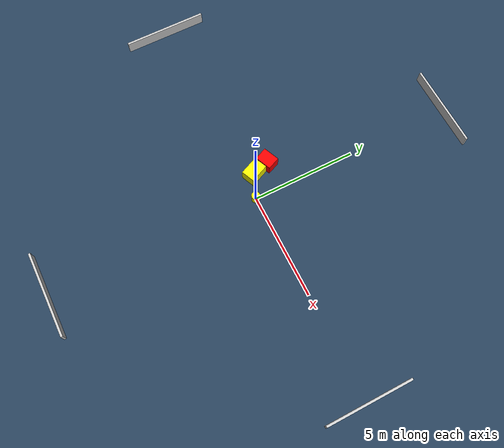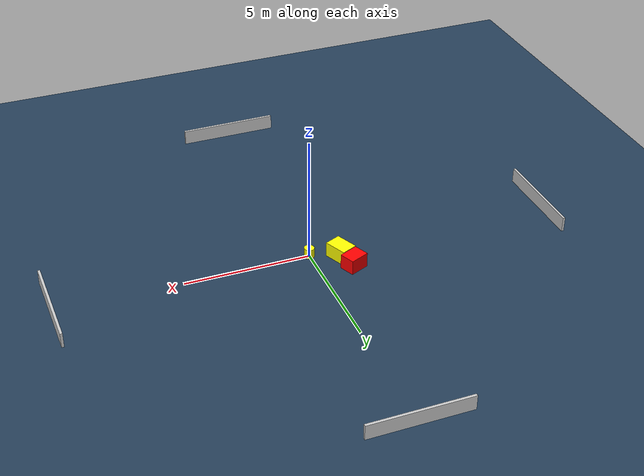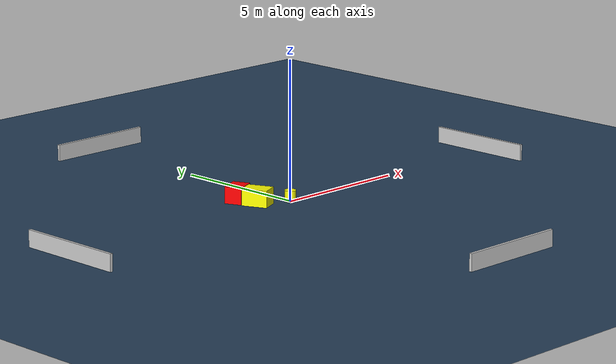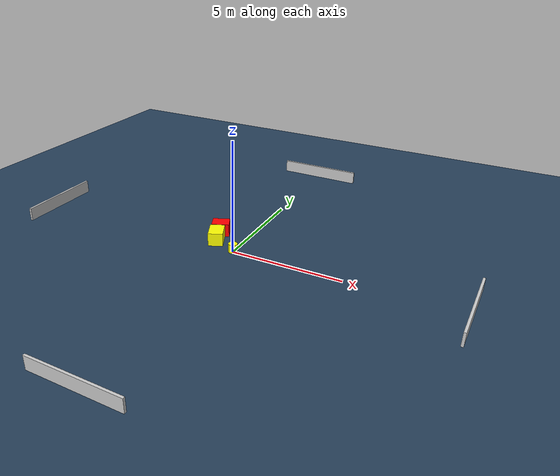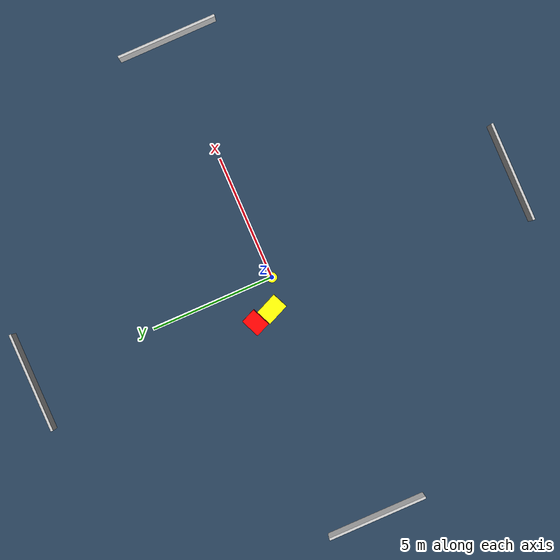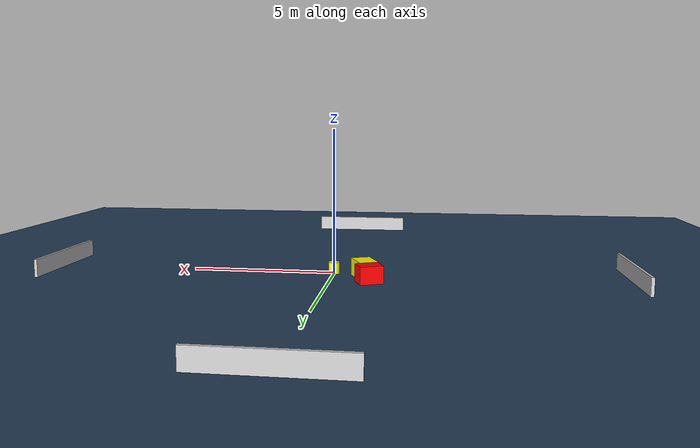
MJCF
<?xml version="1.0" ?>
<mujoco model="generated_environment">
  <option timestep="0.01" integrator="RK4" cone="elliptic"/>
  <default>
    <geom density="1"/>
  </default>
  <asset>
    <texture builtin="gradient" height="3072" name="skybox" rgb1="0.3 0.5 0.7" rgb2="0 0 0" type="skybox" width="512"/>
    <texture builtin="checker" height="300" name="groundplane" rgb1="0.2 0.3 0.4" rgb2="0.1 0.2 0.3" type="2d" width="300"/>
    <material name="groundplane" reflectance="0.2" texrepeat="5 5" texture="groundplane"/>
  </asset>
  <worldbody>
    <light dir="0 0 -1" directional="true" pos="0 0 1.5"/>
    <geom condim="3" friction="0.5 0.005 0.001" material="groundplane" name="floor" pos="0 0 0" size="0 0 0.05" type="plane"/>
    <body name="walls">
      <geom name="wall_1" condim="4" pos="-10.0 0.0 0.3" rgba="0.800000011920929 0.800000011920929 0.800000011920929 1.0" size="0.05 2.0 0.3" type="box"/>
      <geom name="wall_2" condim="4" pos="10.0 0.0 0.3" rgba="0.800000011920929 0.800000011920929 0.800000011920929 1.0" size="0.05 2.0 0.3" type="box"/>
      <geom name="wall_3" condim="4" pos="0.0 -10.0 0.3" rgba="0.800000011920929 0.800000011920929 0.800000011920929 1.0" size="2.0 0.05 0.3" type="box"/>
      <geom name="wall_4" condim="4" pos="0.0 10.0 0.3" rgba="0.800000011920929 0.800000011920929 0.800000011920929 1.0" size="2.0 0.05 0.3" type="box"/>
    </body>
    <body name="robot">
      <joint name="joint_x" type="slide" pos="0 0 0" axis="1 0 0"/>
      <joint name="joint_y" type="slide" pos="0 0 0" axis="0 1 0"/>
      <geom name="robot" type="cylinder" pos="0.0 0.0 0.2" size="0.2 0.2 0.0" mass="5.0" friction="1.0 0.005 0.0001" condim="4" rgba="1.0 1.0 0.0 1.0"/>
    </body>
    <body name="obstacle_1_movable">
      <geom name="obstacle_1_movable" condim="4" pos="-1.1126892251970064 0.48747244144666474 0.3" euler="0 0 293.6424145959676" friction="0.0 0.005 0.001" rgba="1.0 1.0 0.0 1.0" size="0.4621298304924526 0.3293158665064426 0.3" type="box" mass="0.1"/>
      <joint type="free"/>
    </body>
    <body name="obstacle_2_static">
      <geom name="obstacle_2_static" condim="4" pos="-1.33191793277868 1.2659455253858276 0.3" euler="0 0 113.2740559753776" friction="0.0 0.005 0.001" rgba="1.0 0.0 0.0 1.0" size="0.31135893743293663 0.3974899864897918 0.3" type="box"/>
    </body>
  </worldbody>
  <actuator>
    <motor name="actuator_x" joint="joint_x" gear="1" ctrlrange="-1 1"/>
    <motor name="actuator_y" joint="joint_y" gear="1" ctrlrange="-1 1"/>
  </actuator>
</mujoco>
